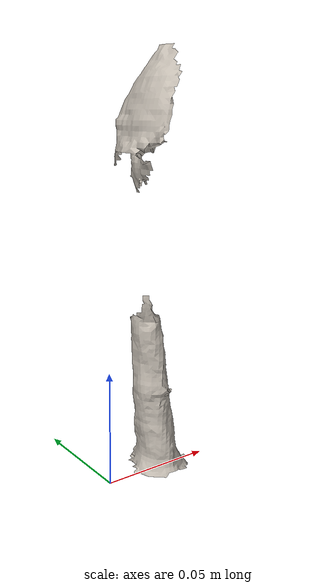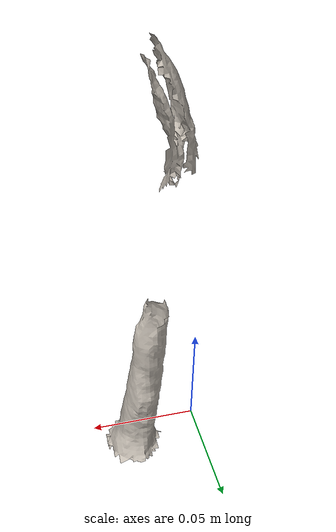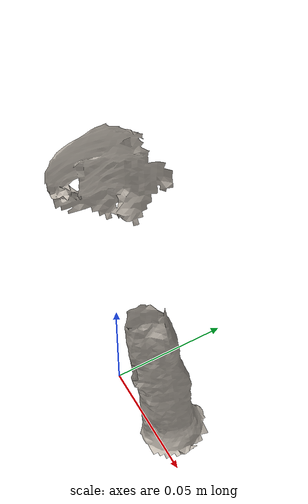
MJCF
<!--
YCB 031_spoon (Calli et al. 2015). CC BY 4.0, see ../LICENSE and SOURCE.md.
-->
<mujoco model="ycb_031_spoon">
  <compiler angle="radian" meshdir="." texturedir="."/>
  <asset>
    <texture name="spoon" type="2d" file="texture_map.png"/>
    <material name="spoon" texture="spoon"/>
    <mesh name="spoon" file="textured.obj"/>
  </asset>
  <worldbody>
    <body name="spoon">
      <freejoint name="spoon_free"/>
      <geom name="spoon_visual" type="mesh" mesh="spoon" material="spoon" pos="0.0271 0.0050 -0.0098"
            contype="0" conaffinity="0" group="2" mass="0"/>
      <geom name="spoon_collision" type="mesh" mesh="spoon" pos="0.0271 0.0050 -0.0098" mass="0.03"
            group="3" condim="4" friction="0.9 0.005 0.0001"/>
    </body>
  </worldbody>
</mujoco>
